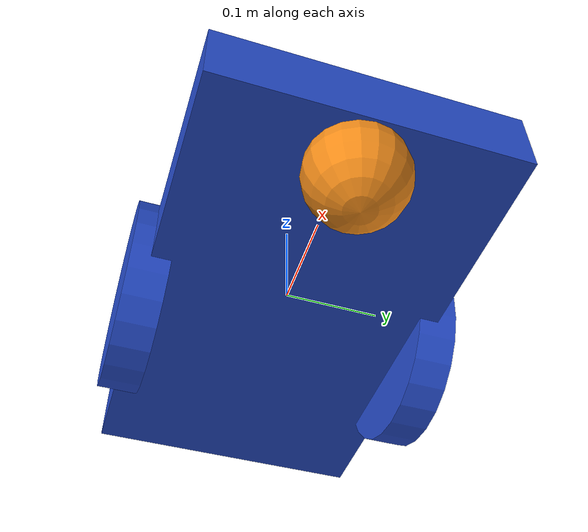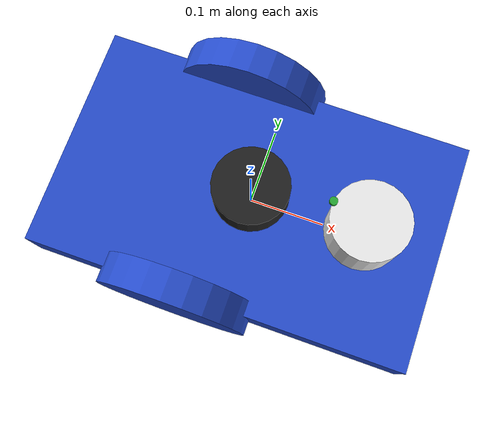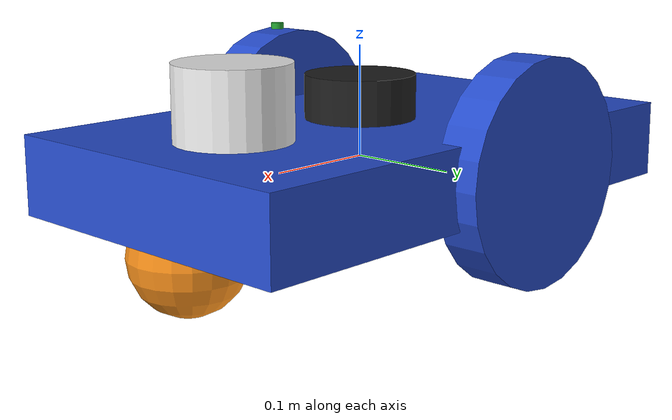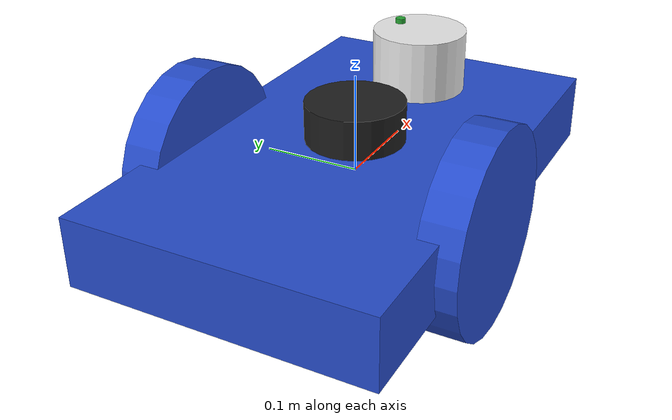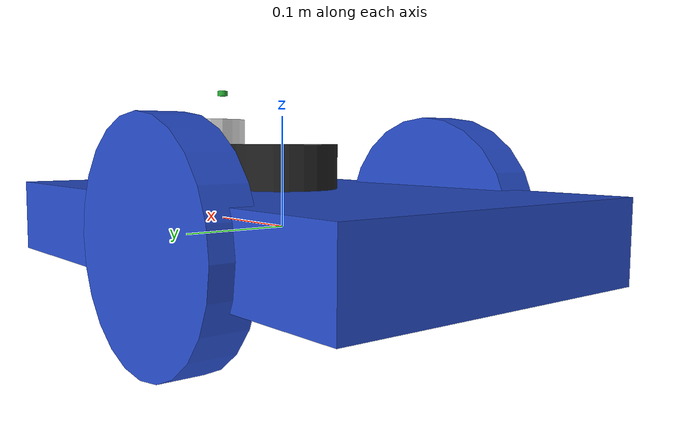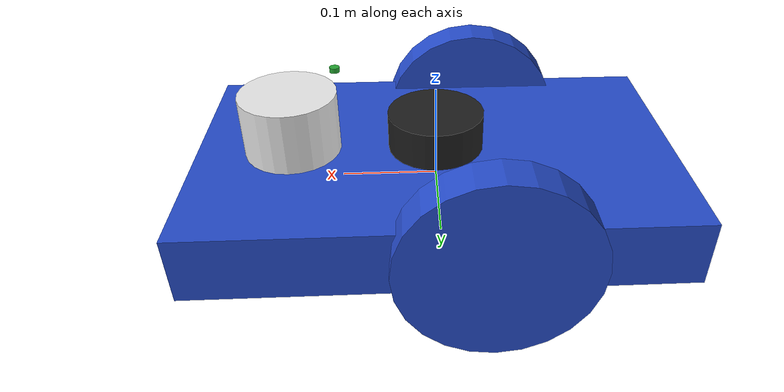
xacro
<?xml version="1.0" ?>

<robot name="savvyage" xmlns:xacro="https://www.ros.org/wiki/xacro" >

  <xacro:include filename="$(find bot_description)/urdf/materials.xacro" />
  <xacro:include filename="$(find bot_description)/urdf/bot.gazebo" />
  <xacro:include filename="$(find bot_description)/urdf/macros.xacro" />
  <xacro:property name="camera_link" value="0.08" /> <!-- Size of square 'camera' box -->

  <link name="link_chassis">
    <!-- pose and inertial -->
    <pose>0 0 0.1 0 0 0</pose>

    <inertial>
      <mass value="5"/>
      <origin rpy="0 0 0" xyz="0 0 0.1"/>
      <inertia ixx="0.0395416666667" ixy="0" ixz="0" iyy="0.106208333333" iyz="0" izz="0.106208333333"/>
    </inertial>

    <collision name="collision_chassis">
      <geometry>
        <box size="0.5 0.3 0.07"/>
      </geometry>
    </collision>

    <visual>
      <origin rpy="0 0 0" xyz="0 0 0"/>
      <geometry>
        <box size="0.5 0.3 0.07"/>
      </geometry>
      <material name="blue"/>
    </visual>

    <!-- caster front -->
    <collision name="caster_front_collision">
      <origin rpy=" 0 0 0" xyz="0.35 0 -0.05"/>
      <geometry>
        <sphere radius="0.05"/>
      </geometry>
      <surface>
        <friction>
          <ode>
            <mu>0</mu>
            <mu2>0</mu2>
            <slip1>1.0</slip1>
            <slip2>1.0</slip2>
          </ode>
        </friction>
      </surface>
    </collision>
    <visual name="caster_front_visual">
      <origin rpy=" 0 0 0" xyz="0.2 0 -0.05"/>
      <geometry>
        <sphere radius="0.05"/>
      </geometry>
    </visual>
    </link>

  <link name="sensor_laser">
    <inertial>
      <origin xyz="0 0 0" rpy="0 0 0" />
      <mass value="1" />
      <!-- RANDOM INERTIA BELOW -->
      <inertia ixx="0.02" ixy="0" ixz="0" iyy="0.02" iyz="0" izz="0.02"/>
    </inertial>

    <visual>
      <origin xyz="0 0 0" rpy="0 0 0" />
      <geometry>
        <cylinder radius="0.05" length="0.1"/>
      </geometry>
      <material name="white" />
    </visual>

    <collision>
      <origin xyz="0 0 0" rpy="0 0 0"/>
      <geometry>
        <cylinder radius="0.05" length="0.1"/>
      </geometry>
    </collision>
  </link>

  <joint name="joint_sensor_laser" type="fixed">
    <origin xyz="0.15 0 0.05" rpy="0 0 0"/>
    <parent link="link_chassis"/>
    <child link="sensor_laser"/>
  </joint>

  <!-- Camera -->
  <link name="camera_link">
    <collision>
      <origin xyz="-0.05 0 0" rpy="0 0 0"/>
      <geometry>
        <cylinder radius="0.005" length="0.005"/>
      </geometry>
    </collision>

    <visual>
      <origin xyz="-0.05 0 0" rpy="0 0 0"/>
      <geometry>
        <cylinder radius="0.005" length="0.005"/>
      </geometry>
      <material name="green"/>
    </visual>

    <inertial>
      <mass value="1e-5" />
      <origin xyz="0 0 0" rpy="0 0 0"/>
      <inertia ixx="1e-6" ixy="0" ixz="0" iyy="1e-6" iyz="0" izz="1e-6" />
    </inertial>
  </link>

  <joint name="camera_joint" type="fixed">
    <axis xyz="0 1 0" />
    <origin xyz="0.15 0 0.125" rpy="0 0 0"/>
    <parent link="link_chassis"/>
    <child link="camera_link"/>
  </joint>

  <!-- IMU -->
  <link name="imu_link">
    <collision>
      <origin xyz="0 0 0" rpy="0 0 0"/>
      <geometry>
        <cylinder radius="0.05" length="0.05"/>
      </geometry>
    </collision>

    <visual>
      <origin xyz="0 0 0" rpy="0 0 0"/>
      <geometry>
        <cylinder radius="0.05" length="0.05"/>
      </geometry>
      <material name="black"/>
    </visual>

    <inertial>
      <mass value="1e-5" />
      <origin xyz="0 0 0" rpy="0 0 0"/>
      <inertia ixx="1e-6" ixy="0" ixz="0" iyy="1e-6" iyz="0" izz="1e-6" />
    </inertial>
  </link>

  <joint name="imu_joint" type="fixed">
    <axis xyz="0 1 0" />
    <origin xyz="0 0 0.05" rpy="0 0 0"/>
    <parent link="link_chassis"/>
    <child link="imu_link"/>
  </joint>

  <!-- Create wheel right -->
  <xacro:link_wheel name= "link_right_wheel" />

  <!--   Joint for right wheel  -->
  <xacro:joint_wheel name="joint_right_wheel"  child="link_right_wheel"  origin_xyz="-0.05 -0.15 0"  />

  <!-- Left Wheel link -->
  <xacro:link_wheel name= "link_left_wheel" />

  <!--   Joint for right wheel  -->
  <xacro:joint_wheel name="joint_left_wheel"   child="link_left_wheel"   origin_xyz="-0.05 0.15 0"  />

</robot>

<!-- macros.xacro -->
<robot xmlns:xacro="http://www.ros.org/wiki/xacro">
    <xacro:macro name="link_wheel" params="name">
        <link name="${name}">
            <inertial>
              <mass value="0.2"/>
              <origin rpy="0 1.5707 1.5707" xyz="0 0 0"/>
              <inertia ixx="0.000526666666667" ixy="0" ixz="0" iyy="0.000526666666667" iyz="0" izz="0.001"/>
            </inertial>
            <collision name="${name}_collision">
              <origin rpy="0 1.5707 1.5707" xyz="0 0 0"/>
              <geometry>
                <cylinder length="0.04" radius="0.1"/>
              </geometry>
            </collision>
            <visual name="${name}_visual">
              <origin rpy="0 1.5707 1.5707" xyz="0 0 0"/>
              <geometry>
                <cylinder length="0.04" radius="0.1"/>
              </geometry>
            </visual>
        </link>
    </xacro:macro>

    <xacro:macro name="joint_wheel" params="name child origin_xyz">
      <joint name="${name}" type="continuous">
        <origin rpy="0 0 0" xyz="${origin_xyz}"/>
        <child link="${child}"/>
        <parent link="link_chassis"/>
        <axis rpy="0 0 0" xyz="0 2 0"/>
        <limit effort="10000" velocity="1000"/>
        <joint_properties damping="1.0" friction="1.0"/>
      </joint>
    </xacro:macro>

    <xacro:macro name="cylinder_inertia" params="mass r l">
      <inertia ixx="${mass*(3*r*r+l*l)/12}" ixy = "0" ixz = "0"
                iyy="${mass*(3*r*r+l*l)/12}" iyz = "0" izz="${mass*(r*r)/2}" />
    </xacro:macro>

</robot>
